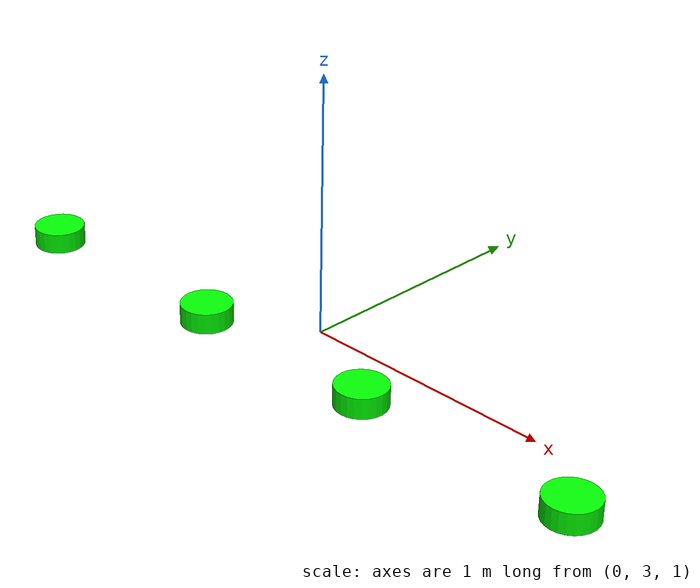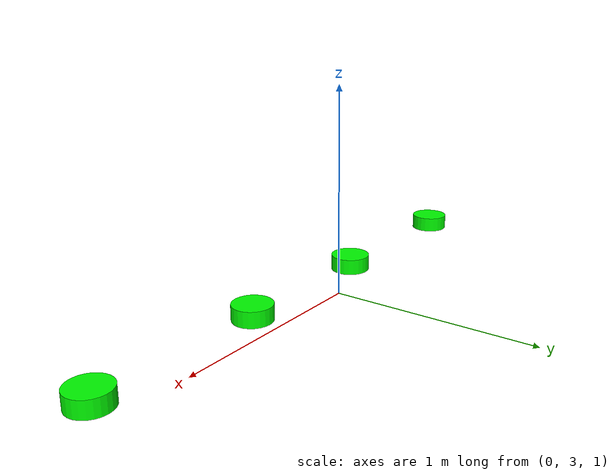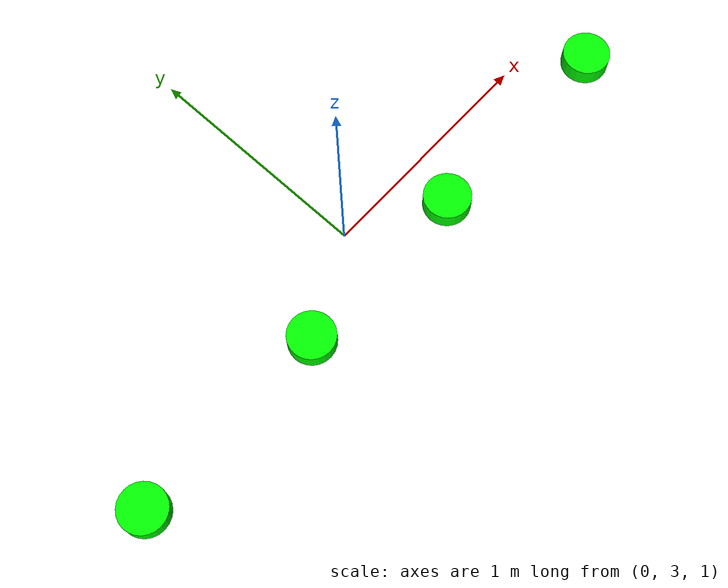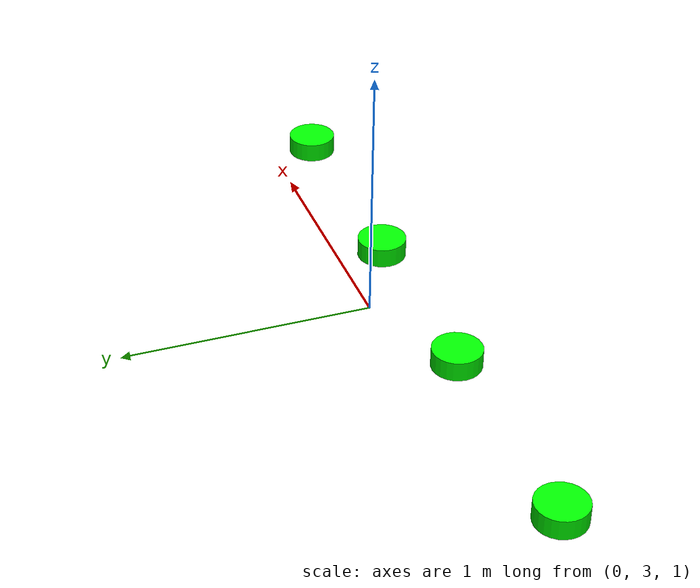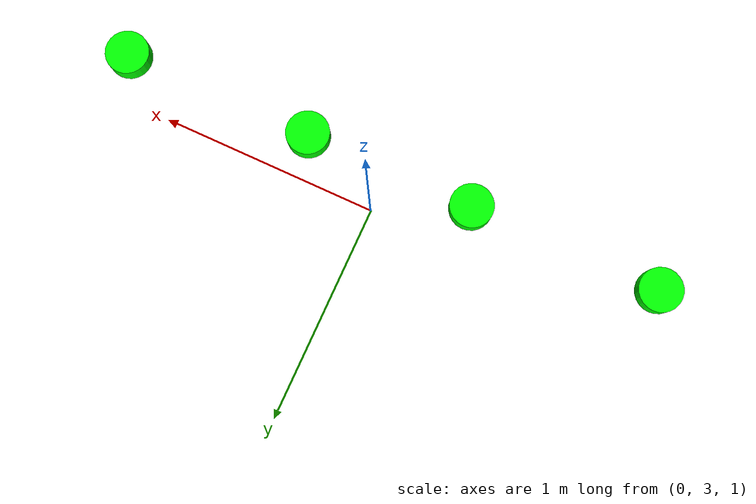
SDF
<?xml version="1.0" ?>
<sdf version="1.9">

		<model name="objects">

            <!-- OBJECT 1 -->
			<link name="link_object1">
				<pose>0.4 2.8 1 0 0 0</pose>
				<visual name="visual_object1">
					<geometry>
						<cylinder>
							<radius>.1</radius>
							<length>0.08</length>
						</cylinder>
					</geometry>
					<material>
						<diffuse>0 1 0 1</diffuse>
					</material>
				</visual>

				<collision name="collision_object1">
					<geometry>
						<cylinder>
							<radius>.1</radius>
							<length>0.08</length>
						</cylinder>
					</geometry>

					<surface>
						<friction>
							<ode>
								<mu>0.05</mu>
							</ode>
						</friction>
					</surface>

				</collision>

			</link>

			<link name="link_object2">
				<pose>-0.4 2.8 1 0 0 0</pose>
				<visual name="visual_object2">
					<geometry>
						<cylinder>
							<radius>.1</radius>
							<length>0.08</length>
						</cylinder>
					</geometry>
					<material>
						<diffuse>0 1 0 1</diffuse>
					</material>
				</visual>

				<collision name="collision_object2">
					<geometry>
						<cylinder>
							<radius>.1</radius>
							<length>0.08</length>
						</cylinder>
					</geometry>

					<surface>
						<friction>
							<ode>
								<mu>0.05</mu>
							</ode>
						</friction>
					</surface>

				</collision>
			</link>

			<link name="link_object3">
				<pose>1.3 2.8 1 0 0 0</pose>
				<visual name="visual_object3">
					<geometry>
						<cylinder>
							<radius>.1</radius>
							<length>0.08</length>
						</cylinder>
					</geometry>
					<material>
						<diffuse>0 1 0 1</diffuse>
					</material>
				</visual>

				<collision name="collision_object3">
					<geometry>
						<cylinder>
							<radius>.1</radius>
							<length>0.08</length>
						</cylinder>
					</geometry>

					<surface>
						<friction>
							<ode>
								<mu>0.05</mu>
							</ode>
						</friction>
					</surface>

				</collision>
			</link>

			<link name="link_object4">
				<pose>-1.3 2.8 1 0 0 0</pose>
				<visual name="visual_object4">
					<geometry>
						<cylinder>
							<radius>.1</radius>
							<length>0.08</length>
						</cylinder>
					</geometry>
					<material>
						<diffuse>0 1 0 1</diffuse>
					</material>
				</visual>

				<collision name="collision_object4">
					<geometry>
						<cylinder>
							<radius>.1</radius>
							<length>0.08</length>
						</cylinder>
					</geometry>

					<surface>
						<friction>
							<ode>
								<mu>0.05</mu>
							</ode>
						</friction>
					</surface>

				</collision>

			</link>

		</model>

	</sdf>
